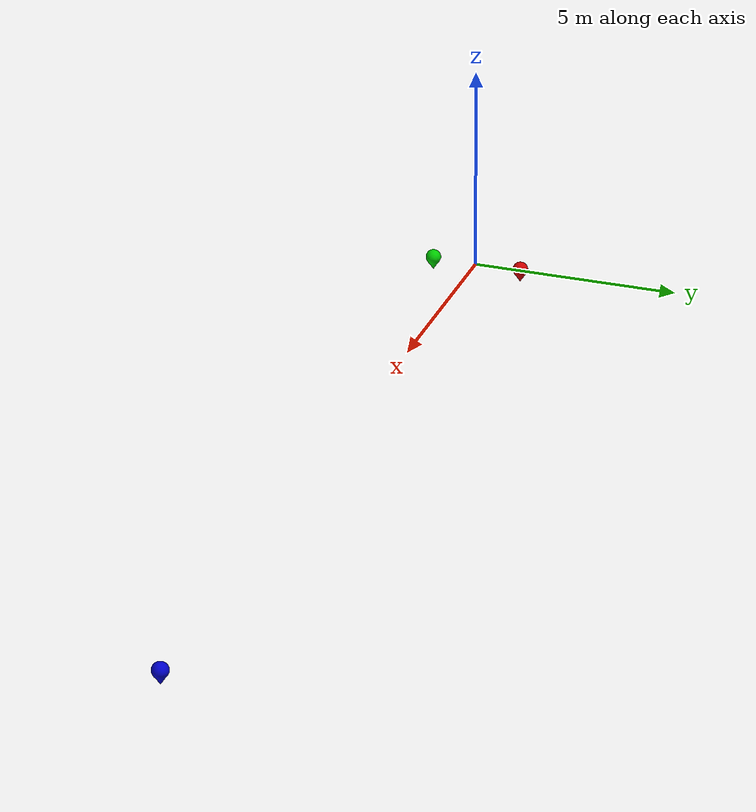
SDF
<?xml version="1.0" ?>
<sdf version="1.6">
  <model name="SnackRun">
    <link name="SnackRunl">
      <pose>0 0 0 0 0 0</pose>
      <velocity_decay>
        <linear>0.001</linear>
        <angular>0.001</angular>
      </velocity_decay>
      <inertial>
        <pose>0 0 -10 0 0 0</pose>
        <mass>10</mass>
        <inertia>
          <ixx>10</ixx>
          <ixy>0</ixy>
          <ixz>0</ixz>
          <iyy>10</iyy>
          <iyz>0</iyz>
          <izz>10</izz>
        </inertia>
      </inertial>
      <collision name="SnackRunc">
        <geometry>
	  <mesh><uri>model://SnackRun/mesh/SnackRun.dae</uri></mesh>
          <cylinder>
            <radius>0.25</radius>
            <length>1.0</length>
          </cylinder>
        </geometry>
      </collision>
      <visual name="SnackRunv">
        <geometry>
	<mesh><uri>model://SnackRun/mesh/SnackRun.dae</uri></mesh>
        </geometry>
      </visual>
    </link>
  </model>
</sdf>
